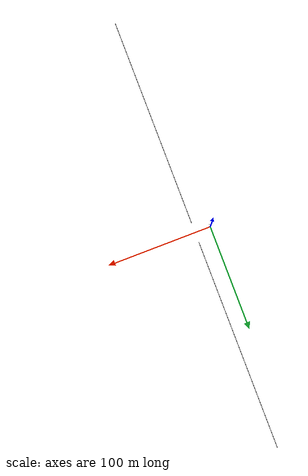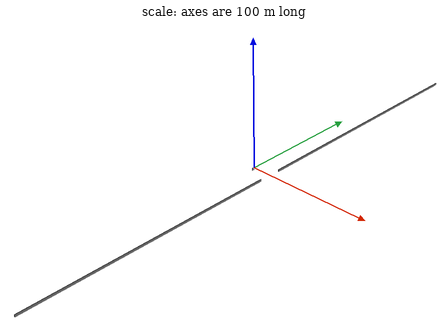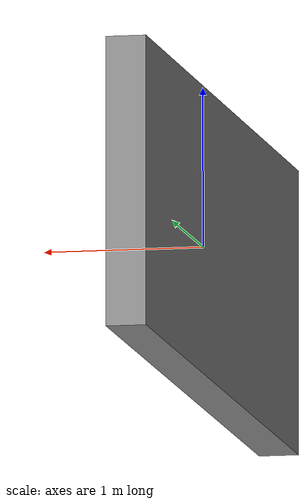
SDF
<?xml version="1.0" ?>
<sdf version="1.7">
  <model name="static_obstacle_wall">
    <static>true</static>
    <link name="wall_link">
      <collision name="wall_collision">
        <geometry>
          <box>
            <size>0.25 5.0 1.8</size>
          </box>
        </geometry>
      </collision>
      <visual name="wall_visual">
        <geometry>
          <box>
            <size>0.25 5.0 1.8</size>
          </box>
        </geometry>
        <material>
          <ambient>0.55 0.55 0.55 1</ambient>
          <diffuse>0.55 0.55 0.55 1</diffuse>
        </material>
      </visual>
    </link>
    <link name="wall_link_rear_right">
      <pose>15.0 -109.0 0 0 0 0</pose>
      <collision name="wall_collision_rear_right">
        <geometry>
          <box>
            <size>0.25 200.0 1.8</size>
          </box>
        </geometry>
      </collision>
      <visual name="wall_visual_rear_right">
        <geometry>
          <box>
            <size>0.25 200.0 1.8</size>
          </box>
        </geometry>
        <material>
          <ambient>0.50 0.50 0.50 1</ambient>
          <diffuse>0.50 0.50 0.50 1</diffuse>
        </material>
      </visual>
    </link>
    <link name="wall_link_rear_left">
      <pose>15.0 109.0 0 0 0 0</pose>
      <collision name="wall_collision_rear_left">
        <geometry>
          <box>
            <size>0.25 200.0 1.8</size>
          </box>
        </geometry>
      </collision>
      <visual name="wall_visual_rear_left">
        <geometry>
          <box>
            <size>0.25 200.0 1.8</size>
          </box>
        </geometry>
        <material>
          <ambient>0.50 0.50 0.50 1</ambient>
          <diffuse>0.50 0.50 0.50 1</diffuse>
        </material>
      </visual>
    </link>
  </model>
</sdf>
